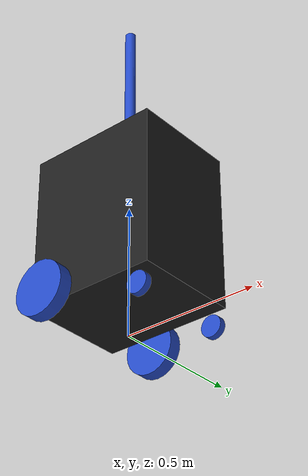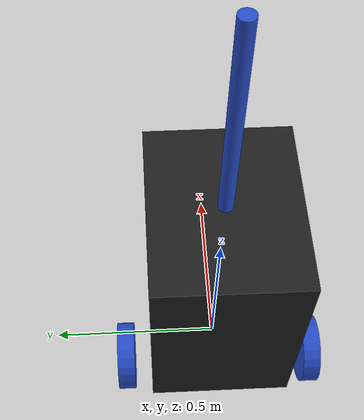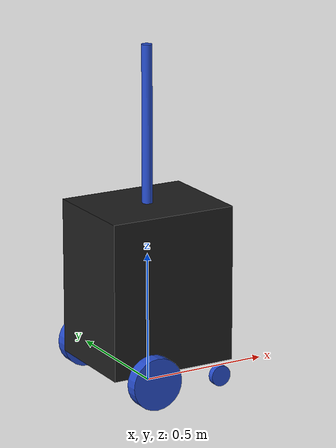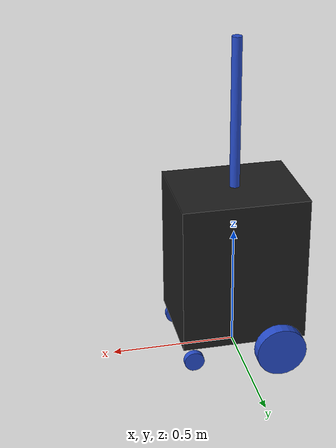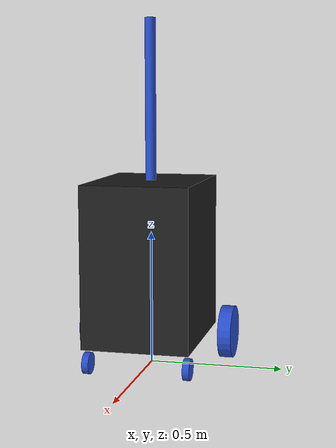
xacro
<?xml version="1.0"?>
<robot xmlns:xacro="http://www.ros.org/wiki/xacro">

    <xacro:property name="base_length" value="0.5"/>
    <xacro:property name="base_width" value="0.4" />
    <xacro:property name="base_height" value="0.6" />
    <xacro:property name="wheel_radius" value="0.1" />
    <xacro:property name="wheel_width" value="0.05" />
    <xacro:property name="caster_wheel_radius" value="0.04" />
    <xacro:property name="caster_wheel_width" value="0.025" />
    <xacro:property name="pole_length" value="0.6" />
    <xacro:property name="pole_radius" value="0.02" />
    <xacro:property name="gap_for_wheels" value="0.05" />
    <xacro:property name="gap_for_caster_wheels" value="${wheel_radius - (2*caster_wheel_radius)}" />

    <link name="base_footprint">
    </link>

    <joint name="base_joint" type="fixed">
        <parent link="base_footprint"/>
        <child link="base_link"/>
        <origin xyz="0 0 ${wheel_radius}" rpy="0 0 0"/>
    </joint>

    <link name="base_link">
        <visual>
            <geometry>
                <box size="${base_length} ${base_width} ${base_height}"/>
            </geometry>
            <origin xyz="0 0 ${base_height/2}" rpy="0 0 0"/>
            <material name="black"/>
        </visual>
        <collision>
            <geometry>
                <box size="${base_length} ${base_width} ${base_height}"/>
            </geometry>
            <origin xyz="0 0 ${base_height/2}" rpy="0 0 0"/>
        </collision>
        <xacro:box_inertia m="20" x="${base_length}" y="${base_width}" z="${base_height}"
                           o_xyz="0 0 0" o_rpy="0 0 0" />
    </link>

    <link name="pole_link">
        <visual>
            <geometry>
                <cylinder radius="${pole_radius}" length="${pole_length}" />
            </geometry>
            <origin xyz="0 0 0" rpy="0 0 0" />
            <material name="blue" />
        </visual>
        <collision>
            <geometry>
                <cylinder radius="${pole_radius}" length="${pole_length}" />
            </geometry>
            <origin xyz="0 0 0" rpy="0 0 0" />
        </collision>
        <xacro:cylinder_inertia m="0.1" r="${pole_radius}" l="${pole_length}"
                                o_xyz="0 0 0" o_rpy="0 0 0" />
    </link>

    <xacro:macro name="wheel_link" params="prefix">
        <link name="${prefix}_wheel_link">
            <visual>
                <geometry>
                    <cylinder radius="${wheel_radius}" length="${wheel_width}"/>
                </geometry>
                <origin xyz="0 0 0" rpy="${pi/2.0} 0 0"/>
                <material name="blue"/>
            </visual>
            <collision>
                <geometry>
                    <sphere radius="${wheel_radius}" />
                </geometry>
                <origin xyz = "0 0 0" rpy="${pi/2.0} 0 0" />
            </collision>
            <xacro:wheel_inertia m="0.2" r="${wheel_radius}" h="${wheel_width}"
                           o_xyz="0 0 0" o_rpy="${pi/2.0} 0 0" />
        </link>
    </xacro:macro>

    <xacro:wheel_link prefix="rear_right" />
    <xacro:wheel_link prefix="rear_left" />

    <xacro:macro name="caster_wheel_link" params="prefix">

        <link name="${prefix}_wheel_link">
            <visual>
                <geometry>
                    <cylinder radius="${caster_wheel_radius}" length="${caster_wheel_width}"/>
                </geometry>
                <origin xyz="0 0 0" rpy="${pi/2.0} 0 0"/>
                <material name="blue"/>
            </visual>

            <collision>
                <geometry>
                    <cylinder radius="${caster_wheel_radius}" length="${caster_wheel_width}"/>
                </geometry>
                <origin xyz="0 0 0" rpy="${pi/2.0} 0 0"/>
            </collision>

            <xacro:wheel_inertia m="0.05" r="${caster_wheel_radius}" h="${caster_wheel_width}"
                           o_xyz="0 0 0" o_rpy="${pi/2.0} 0 0" />
        </link>
    </xacro:macro>

    <xacro:caster_wheel_link prefix="front_right" />
    <xacro:caster_wheel_link prefix="front_left" />

    <joint name="pole_base_joint" type="fixed">
        <parent link="base_link"/>
        <child link="pole_link"/>
        <origin xyz="0 0 ${base_height + base_height/2}" rpy="0 0 0"/>
    </joint>

    <!--front caster joints-->

    <joint name="front_left_caster_joint" type="fixed">
        <parent link="base_link"/>
        <child link="front_left_wheel_link"/>
        <origin xyz="${(base_length/4) + (2*caster_wheel_radius)} ${(base_width/2)-(caster_wheel_width/2)} ${-(caster_wheel_radius+gap_for_caster_wheels)}" rpy="0 0 0"/>
    </joint>

    <joint name="front_right_caster_joint" type="fixed">
        <parent link="base_link"/>
        <child link="front_right_wheel_link"/>
        <origin xyz="${(base_length/4) + (2*caster_wheel_radius)} ${-((base_width/2)-(caster_wheel_width/2))} ${-(caster_wheel_radius+gap_for_caster_wheels)}" rpy="0 0 0"/>
    </joint>

    <joint name="base_rear_left_wheel_joint" type="fixed">
        <parent link="base_link"/>
        <child link="rear_left_wheel_link"/>
        <origin xyz="${-base_length/4} ${(base_width/2)+(wheel_width/2) + gap_for_wheels} 0" rpy="0 0 0"/>
        <axis xyz="0 1 0"/>
    </joint>

    <joint name="base_rear_right_wheel_joint" type="fixed">
        <parent link="base_link"/>
        <child link="rear_right_wheel_link"/>
        <origin xyz="${-base_length/4} ${-((base_width/2)+(wheel_width/2)+gap_for_wheels)} 0" rpy="0 0 0"/>
        <axis xyz="0 1 0"/>
    </joint>
</robot>
